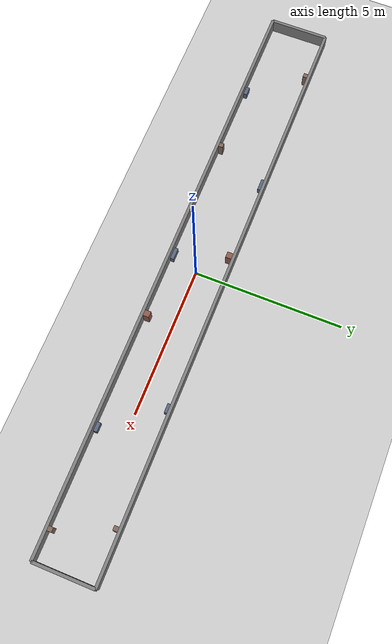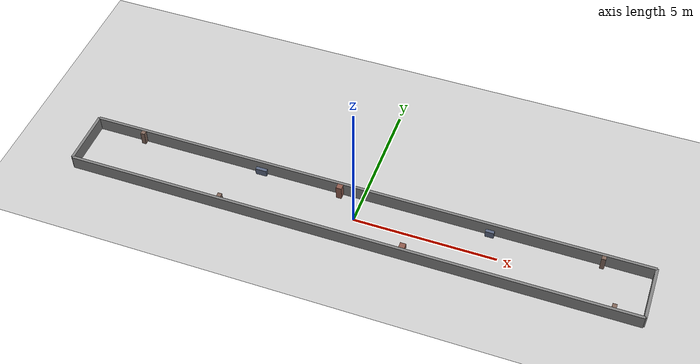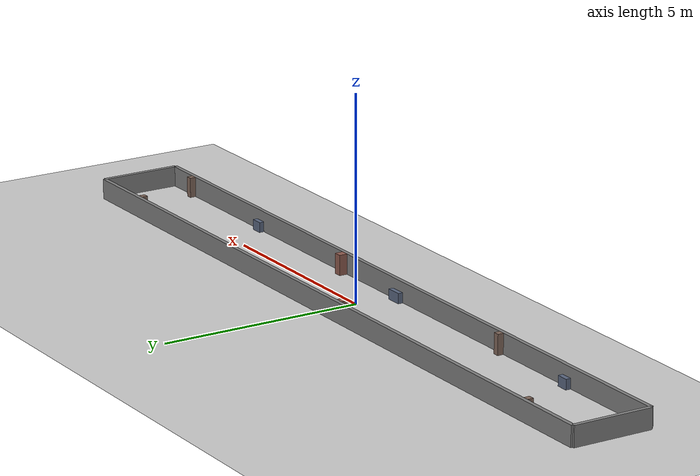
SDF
<?xml version="1.0" ?>
<sdf version="1.6">
  <world name="default">
    <!-- Ignition Fortress (v6) plugins - DO NOT use gz-sim-* or gz::sim::systems::* -->
    <plugin filename="libignition-gazebo-physics-system.so" name="ignition::gazebo::systems::Physics"/>
    <plugin filename="libignition-gazebo-user-commands-system.so" name="ignition::gazebo::systems::UserCommands"/>
    <plugin filename="libignition-gazebo-scene-broadcaster-system.so" name="ignition::gazebo::systems::SceneBroadcaster"/>
    <plugin filename="libignition-gazebo-imu-system.so" name="ignition::gazebo::systems::Imu"/>
    <plugin filename="libignition-gazebo-sensors-system.so" name="ignition::gazebo::systems::Sensors">
      <render_engine>ogre2</render_engine>
    </plugin>

    <!-- Directional light -->
    <light name="sun" type="directional">
      <pose>0 0 10 0 0.5 0</pose>
      <diffuse>1 1 1 1</diffuse>
      <specular>1 1 1 1</specular>
      <direction>-1 -1 -1</direction>
      <cast_shadows>true</cast_shadows>
    </light>

    <!-- Inline ground plane -->
    <model name="ground_plane">
      <static>true</static>
      <link name="link">
        <collision name="collision">
          <geometry>
            <plane>
              <normal>0 0 1</normal>
              <size>50 50</size>
            </plane>
          </geometry>
          <surface>
            <friction>
              <ode>
                <mu>100</mu>
                <mu2>50</mu2>
              </ode>
            </friction>
          </surface>
        </collision>
        <visual name="visual">
          <geometry>
            <plane>
              <normal>0 0 1</normal>
              <size>50 50</size>
            </plane>
          </geometry>
          <material>
            <ambient>0.8 0.8 0.8 1</ambient>
            <diffuse>0.8 0.8 0.8 1</diffuse>
            <specular>0.1 0.1 0.1 1</specular>
          </material>
        </visual>
      </link>
    </model>

    <!-- South wall (y=+1.0): 20m along X, 0.1m thick, 0.5m tall -->
    <model name="wall_south">
      <static>true</static>
      <pose>0 1.0 0.25 0 0 0</pose>
      <link name="link">
        <collision name="collision">
          <geometry>
            <box>
              <size>20 0.1 0.5</size>
            </box>
          </geometry>
        </collision>
        <visual name="visual">
          <geometry>
            <box>
              <size>20 0.1 0.5</size>
            </box>
          </geometry>
          <material>
            <ambient>0.3 0.3 0.3 1</ambient>
            <diffuse>0.5 0.5 0.5 1</diffuse>
            <specular>0.1 0.1 0.1 1</specular>
          </material>
        </visual>
      </link>
    </model>

    <!-- North wall (y=-1.0): 20m along X, 0.1m thick, 0.5m tall -->
    <model name="wall_north">
      <static>true</static>
      <pose>0 -1.0 0.25 0 0 0</pose>
      <link name="link">
        <collision name="collision">
          <geometry>
            <box>
              <size>20 0.1 0.5</size>
            </box>
          </geometry>
        </collision>
        <visual name="visual">
          <geometry>
            <box>
              <size>20 0.1 0.5</size>
            </box>
          </geometry>
          <material>
            <ambient>0.3 0.3 0.3 1</ambient>
            <diffuse>0.5 0.5 0.5 1</diffuse>
            <specular>0.1 0.1 0.1 1</specular>
          </material>
        </visual>
      </link>
    </model>

    <!-- West end wall (x=-10): 2.0m wide, 0.1m thick, 0.5m tall -->
    <model name="wall_west">
      <static>true</static>
      <pose>-10 0 0.25 0 0 0</pose>
      <link name="link">
        <collision name="collision">
          <geometry>
            <box>
              <size>0.1 2.0 0.5</size>
            </box>
          </geometry>
        </collision>
        <visual name="visual">
          <geometry>
            <box>
              <size>0.1 2.0 0.5</size>
            </box>
          </geometry>
          <material>
            <ambient>0.3 0.3 0.3 1</ambient>
            <diffuse>0.5 0.5 0.5 1</diffuse>
            <specular>0.1 0.1 0.1 1</specular>
          </material>
        </visual>
      </link>
    </model>

    <!-- East end wall (x=+10): 2.0m wide, 0.1m thick, 0.5m tall -->
    <model name="wall_east">
      <static>true</static>
      <pose>10 0 0.25 0 0 0</pose>
      <link name="link">
        <collision name="collision">
          <geometry>
            <box>
              <size>0.1 2.0 0.5</size>
            </box>
          </geometry>
        </collision>
        <visual name="visual">
          <geometry>
            <box>
              <size>0.1 2.0 0.5</size>
            </box>
          </geometry>
          <material>
            <ambient>0.3 0.3 0.3 1</ambient>
            <diffuse>0.5 0.5 0.5 1</diffuse>
            <specular>0.1 0.1 0.1 1</specular>
          </material>
        </visual>
      </link>
    </model>

    <!-- South wall features (protrude toward y=0) -->
    <!-- feat_s1: pillar at x=-8.2, gap to next=4.5m -->
    <model name="feat_s1">
      <static>true</static>
      <pose>-8.2 0.875 0.25 0 0 0</pose>
      <link name="link">
        <collision name="collision"><geometry><box><size>0.15 0.15 0.5</size></box></geometry></collision>
        <visual name="visual">
          <geometry><box><size>0.15 0.15 0.5</size></box></geometry>
          <material><ambient>0.4 0.3 0.25 1</ambient><diffuse>0.5 0.4 0.35 1</diffuse><specular>0.1 0.1 0.1 1</specular></material>
        </visual>
      </link>
    </model>
    <!-- feat_s2: wide cabinet at x=-3.7, gap to next=2.9m -->
    <model name="feat_s2">
      <static>true</static>
      <pose>-3.7 0.885 0.125 0 0 0</pose>
      <link name="link">
        <collision name="collision"><geometry><box><size>0.40 0.12 0.25</size></box></geometry></collision>
        <visual name="visual">
          <geometry><box><size>0.40 0.12 0.25</size></box></geometry>
          <material><ambient>0.25 0.3 0.4 1</ambient><diffuse>0.35 0.4 0.5 1</diffuse><specular>0.1 0.1 0.1 1</specular></material>
        </visual>
      </link>
    </model>
    <!-- feat_s3: large pillar at x=-0.8, gap to next=5.3m -->
    <model name="feat_s3">
      <static>true</static>
      <pose>-0.8 0.85 0.25 0 0 0</pose>
      <link name="link">
        <collision name="collision"><geometry><box><size>0.20 0.20 0.5</size></box></geometry></collision>
        <visual name="visual">
          <geometry><box><size>0.20 0.20 0.5</size></box></geometry>
          <material><ambient>0.45 0.25 0.2 1</ambient><diffuse>0.55 0.35 0.3 1</diffuse><specular>0.1 0.1 0.1 1</specular></material>
        </visual>
      </link>
    </model>
    <!-- feat_s4: cabinet at x=4.5, gap to next=3.8m -->
    <model name="feat_s4">
      <static>true</static>
      <pose>4.5 0.885 0.125 0 0 0</pose>
      <link name="link">
        <collision name="collision"><geometry><box><size>0.30 0.12 0.25</size></box></geometry></collision>
        <visual name="visual">
          <geometry><box><size>0.30 0.12 0.25</size></box></geometry>
          <material><ambient>0.25 0.3 0.4 1</ambient><diffuse>0.35 0.4 0.5 1</diffuse><specular>0.1 0.1 0.1 1</specular></material>
        </visual>
      </link>
    </model>
    <!-- feat_s5: pillar at x=8.3 -->
    <model name="feat_s5">
      <static>true</static>
      <pose>8.3 0.875 0.25 0 0 0</pose>
      <link name="link">
        <collision name="collision"><geometry><box><size>0.15 0.15 0.5</size></box></geometry></collision>
        <visual name="visual">
          <geometry><box><size>0.15 0.15 0.5</size></box></geometry>
          <material><ambient>0.4 0.3 0.25 1</ambient><diffuse>0.5 0.4 0.35 1</diffuse><specular>0.1 0.1 0.1 1</specular></material>
        </visual>
      </link>
    </model>

    <!-- North wall features (protrude toward y=0) -->
    <!-- feat_n1: cabinet at x=-7.0, gap to next=2.5m -->
    <model name="feat_n1">
      <static>true</static>
      <pose>-7.0 -0.885 0.125 0 0 0</pose>
      <link name="link">
        <collision name="collision"><geometry><box><size>0.30 0.12 0.25</size></box></geometry></collision>
        <visual name="visual">
          <geometry><box><size>0.30 0.12 0.25</size></box></geometry>
          <material><ambient>0.25 0.3 0.4 1</ambient><diffuse>0.35 0.4 0.5 1</diffuse><specular>0.1 0.1 0.1 1</specular></material>
        </visual>
      </link>
    </model>
    <!-- feat_n2: pillar at x=-4.5, gap to next=4.2m -->
    <model name="feat_n2">
      <static>true</static>
      <pose>-4.5 -0.875 0.25 0 0 0</pose>
      <link name="link">
        <collision name="collision"><geometry><box><size>0.15 0.15 0.5</size></box></geometry></collision>
        <visual name="visual">
          <geometry><box><size>0.15 0.15 0.5</size></box></geometry>
          <material><ambient>0.4 0.3 0.25 1</ambient><diffuse>0.5 0.4 0.35 1</diffuse><specular>0.1 0.1 0.1 1</specular></material>
        </visual>
      </link>
    </model>
    <!-- feat_n3: wide cabinet at x=-0.3, gap to next=2.3m -->
    <model name="feat_n3">
      <static>true</static>
      <pose>-0.3 -0.885 0.125 0 0 0</pose>
      <link name="link">
        <collision name="collision"><geometry><box><size>0.40 0.12 0.25</size></box></geometry></collision>
        <visual name="visual">
          <geometry><box><size>0.40 0.12 0.25</size></box></geometry>
          <material><ambient>0.25 0.3 0.4 1</ambient><diffuse>0.35 0.4 0.5 1</diffuse><specular>0.1 0.1 0.1 1</specular></material>
        </visual>
      </link>
    </model>
    <!-- feat_n4: large pillar at x=2.0, gap to next=3.8m -->
    <model name="feat_n4">
      <static>true</static>
      <pose>2.0 -0.85 0.25 0 0 0</pose>
      <link name="link">
        <collision name="collision"><geometry><box><size>0.20 0.20 0.5</size></box></geometry></collision>
        <visual name="visual">
          <geometry><box><size>0.20 0.20 0.5</size></box></geometry>
          <material><ambient>0.45 0.25 0.2 1</ambient><diffuse>0.55 0.35 0.3 1</diffuse><specular>0.1 0.1 0.1 1</specular></material>
        </visual>
      </link>
    </model>
    <!-- feat_n5: cabinet at x=5.8, gap to next=3.2m -->
    <model name="feat_n5">
      <static>true</static>
      <pose>5.8 -0.885 0.125 0 0 0</pose>
      <link name="link">
        <collision name="collision"><geometry><box><size>0.30 0.12 0.25</size></box></geometry></collision>
        <visual name="visual">
          <geometry><box><size>0.30 0.12 0.25</size></box></geometry>
          <material><ambient>0.25 0.3 0.4 1</ambient><diffuse>0.35 0.4 0.5 1</diffuse><specular>0.1 0.1 0.1 1</specular></material>
        </visual>
      </link>
    </model>
    <!-- feat_n6: pillar at x=9.0 -->
    <model name="feat_n6">
      <static>true</static>
      <pose>9.0 -0.875 0.25 0 0 0</pose>
      <link name="link">
        <collision name="collision"><geometry><box><size>0.15 0.15 0.5</size></box></geometry></collision>
        <visual name="visual">
          <geometry><box><size>0.15 0.15 0.5</size></box></geometry>
          <material><ambient>0.4 0.3 0.25 1</ambient><diffuse>0.5 0.4 0.35 1</diffuse><specular>0.1 0.1 0.1 1</specular></material>
        </visual>
      </link>
    </model>
  </world>
</sdf>
